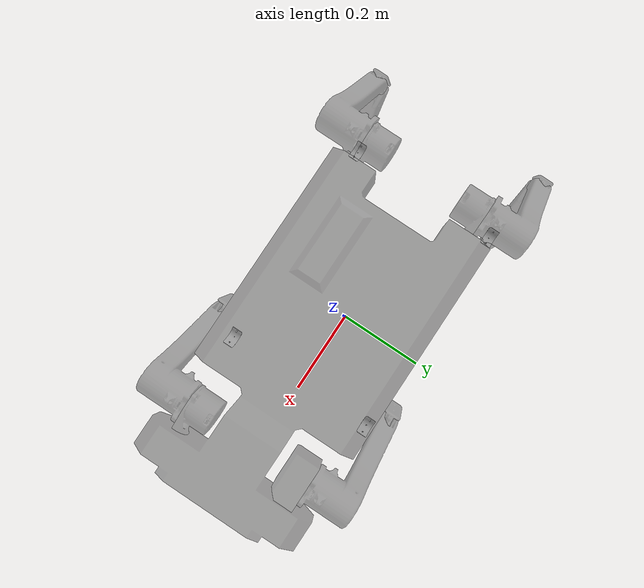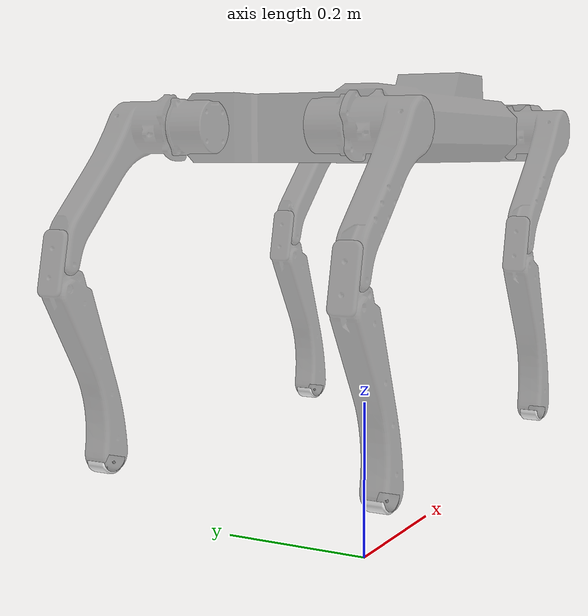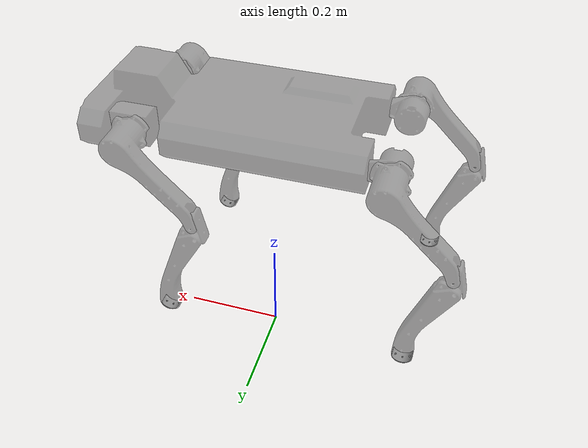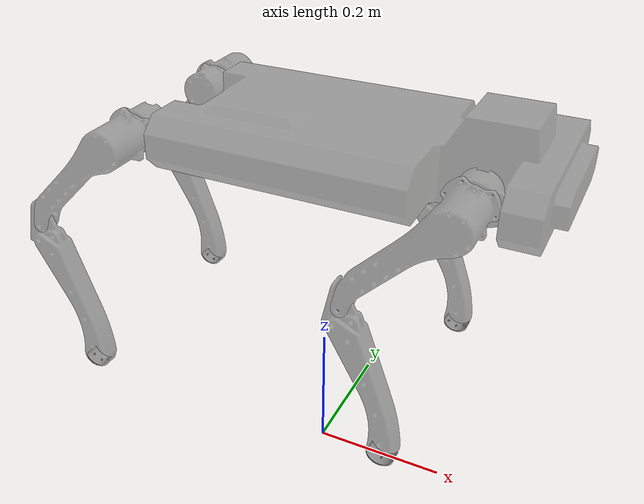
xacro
<?xml version="1.0" encoding="utf-8"?>
<robot name="quadruped" xmlns:xacro="http://ros.org/wiki/xacro">
  <xacro:include filename="ros2_control.xacro"/>

  <link name="world"></link>

  <!-- ******************************  MainBody  ****************************** -->
  <link name="MainBody">
    <inertial>
      <origin
        xyz="0.0699847914844596 -0.00356357206679569 0.0384781103388268"
        rpy="0 0 0" />
      <mass
        value="2.19167044853653" />
      <inertia
        ixx="0.005553479301618"
        ixy="-6.540085990001E-06"
        ixz="7.50530470509038E-07"
        iyy="0.00427828043368081"
        iyz="-5.53252407160373E-06"
        izz="0.00867140989666068" />
    </inertial>
    <visual>
      <origin
        xyz="0 0 0"
        rpy="0 0 0" />
      <geometry>
        <mesh
          filename="package://quadruped/meshes/MainBody.STL" />
      </geometry>
      <material
        name="">
        <color
          rgba="0.3 0.3 0.3 0.5" />
      </material>
    </visual>
    <collision>
      <origin
        xyz="0 0 0"
        rpy="0 0 0" />
      <geometry>
        <mesh
          filename="package://quadruped/meshes/collisions/MainBody.STL" />
      </geometry>
    </collision>
  </link>

  <joint name="MainBodyJoint" type="fixed">
    <origin
      xyz="0 0 0.5"
      rpy="0 0 0" />
    <parent
      link="world" />
    <child
      link="MainBody" />
  </joint>

  <!-- ******************************  FL_HipLink  ****************************** -->
  <link name="FL_HipLink">
    <inertial>
      <origin
        xyz="-0.0474383151933495 -0.0147762956502852 -0.000133539761215884"
        rpy="0 0 0" />
      <mass
        value="0.0912610289974214" />
      <inertia
        ixx="2.62643461992781E-05"
        ixy="6.64542513446049E-07"
        ixz="2.08491311297733E-09"
        iyy="4.14660535595442E-05"
        iyz="-1.29024359886147E-07"
        izz="2.91589180391666E-05" />
    </inertial>
    <visual>
      <origin
        xyz="0 0 0"
        rpy="0 0 0" />
      <geometry>
        <mesh
          filename="package://quadruped/meshes/FL_HipLink.STL" />
      </geometry>
      <material
        name="">
        <color
          rgba="0.3 0.3 0.3 0.5" />
      </material>
    </visual>
    <collision>
      <origin
        xyz="0 0 0"
        rpy="0 0 0" />
      <geometry>
        <mesh
          filename="package://quadruped/meshes/collisions/FL_HipLink.STL" />
      </geometry>
    </collision>
  </link>

  <joint name="FL_HipJoint" type="revolute">
    <origin
      xyz="0.2808 0.1 0.037"
      rpy="0 0 0" />
    <parent
      link="MainBody" />
    <child
      link="FL_HipLink" />
    <axis
      xyz="1 0 0" />
    <limit
      lower="-0.175"
      upper="1.571"
      effort="0"
      velocity="0" />
    <dynamics damping="0.7" />
  </joint>

  <!-- ******************************  FL_FemurLink  ****************************** -->
  <link name="FL_FemurLink">
    <inertial>
      <origin
        xyz="-0.019067661192873 0.0482776334868805 -0.0179044704692111"
        rpy="0 0 0" />
      <mass
        value="0.16400629425815" />
      <inertia
        ixx="0.000129344985699891"
        ixy="-2.90363645954103E-06"
        ixz="-8.0603844096841E-05"
        iyy="0.000234982427796547"
        iyz="-2.84523643101322E-06"
        izz="0.000125756506493398" />
    </inertial>
    <visual>
      <origin
        xyz="0 0 0"
        rpy="0 0 0" />
      <geometry>
        <mesh
          filename="package://quadruped/meshes/FL_FemurLink.STL" />
      </geometry>
      <material
        name="">
        <color
          rgba="0.3 0.3 0.3 0.5" />
      </material>
    </visual>
    <collision>
      <origin
        xyz="0 0 0"
        rpy="0 0 0" />
      <geometry>
        <mesh
          filename="package://quadruped/meshes/collisions/FL_FemurLink.STL" />
      </geometry>
    </collision>
  </link>

  <joint name="FL_FemurJoint" type="revolute">
    <origin
      xyz="-0.054 -0.009 0"
      rpy="0 0 0" />
    <parent
      link="FL_HipLink" />
    <child
      link="FL_FemurLink" />
    <axis
      xyz="0 1 0" />
    <limit
      lower="-0.785"
      upper="0.785"
      effort="0"
      velocity="0" />
    <dynamics damping="0.7" />
  </joint>

  <!-- ******************************  FL_TibiaLink  ****************************** -->
  <link name="FL_TibiaLink">
    <inertial>
      <origin
        xyz="0.0322017175929264 2.39643160090258E-05 -0.0962232443701883"
        rpy="0 0 0" />
      <mass
        value="0.109672208230116" />
      <inertia
        ixx="0.000411262084214036"
        ixy="-9.23674401608681E-07"
        ixz="0.000137528054915291"
        iyy="0.000471917665955004"
        iyz="2.15761541594468E-06"
        izz="6.64698615962603E-05" />
    </inertial>
    <visual>
      <origin
        xyz="0 0 0"
        rpy="0 0 0" />
      <geometry>
        <mesh
          filename="package://quadruped/meshes/FL_TibiaLink.STL" />
      </geometry>
      <material
        name="">
        <color
          rgba="0.3 0.3 0.3 0.5" />
      </material>
    </visual>
    <collision>
      <origin
        xyz="0 0 0"
        rpy="0 0 0" />
      <geometry>
        <mesh
          filename="package://quadruped/meshes/collisions/FL_TibiaLink.STL" />
      </geometry>
    </collision>
  </link>

  <joint name="FL_TibiaJoint"
    type="revolute">
    <origin
      xyz="-0.1283 0.0745 -0.1404"
      rpy="0 0 0" />
    <parent
      link="FL_FemurLink" />
    <child
      link="FL_TibiaLink" />
    <axis
      xyz="0 1 0" />
    <limit
      lower="-1.571"
      upper="0"
      effort="0"
      velocity="0" />
    <dynamics damping="0.7" />
  </joint>

  <!-- ******************************  FL_FootLink  ****************************** -->
  <link name="FL_FootLink">
    <inertial>
      <origin
        xyz="0.000340694607176201 1.29750897526204E-10 0.00531238344111944"
        rpy="0 0 0" />
      <mass
        value="0.0026171008368923" />
      <inertia
        ixx="1.42176481764719E-07"
        ixy="5.41889139229988E-14"
        ixz="2.0650421997253E-08"
        iyy="3.94491238638286E-07"
        iyz="-1.26336440804866E-14"
        izz="4.62835009996326E-07" />
    </inertial>
    <visual>
      <origin
        xyz="0 0 0"
        rpy="0 0 0" />
      <geometry>
        <mesh
          filename="package://quadruped/meshes/FL_FootLink.STL" />
      </geometry>
      <material
        name="">
        <color
          rgba="1 1 1 1" />
      </material>
    </visual>
    <collision>
      <origin
        xyz="0 0 0"
        rpy="0 0 0" />
      <geometry>
        <mesh
          filename="package://quadruped/meshes/collisions/FL_FootLink.STL" />
      </geometry>
    </collision>
  </link>

  <joint name="FL_FootJoint"
    type="fixed">
    <origin
      xyz="0.063753 0 -0.2336"
      rpy="0 0 0" />
    <parent
      link="FL_TibiaLink" />
    <child
      link="FL_FootLink" />
    <axis
      xyz="0 0 0" />
  </joint>

  <!-- ******************************  FR_HipLink  ****************************** -->
  <link name="FR_HipLink">
    <inertial>
      <origin
        xyz="-0.0474384514030271 0.0147763300480575 -0.000133542163833156"
        rpy="0 0 0" />
      <mass
        value="0.0912604374264468" />
      <inertia
        ixx="2.62642303167425E-05"
        ixy="-6.64485390732827E-07"
        ixz="2.08557755571092E-09"
        iyy="4.14659005585127E-05"
        iyz="1.29025236281121E-07"
        izz="2.91587855341185E-05" />
    </inertial>
    <visual>
      <origin
        xyz="0 0 0"
        rpy="0 0 0" />
      <geometry>
        <mesh
          filename="package://quadruped/meshes/FR_HipLink.STL" />
      </geometry>
      <material
        name="">
        <color
          rgba="0.3 0.3 0.3 0.5" />
      </material>
    </visual>
    <collision>
      <origin
        xyz="0 0 0"
        rpy="0 0 0" />
      <geometry>
        <mesh
          filename="package://quadruped/meshes/collisions/FR_HipLink.STL" />
      </geometry>
    </collision>
  </link>

  <joint name="FR_HipJoint"
    type="revolute">
    <origin
      xyz="0.2808 -0.1 0.037"
      rpy="0 0 0" />
    <parent
      link="MainBody" />
    <child
      link="FR_HipLink" />
    <axis
      xyz="1 0 0" />
    <limit
      lower="-1.571"
      upper="0.175"
      effort="0"
      velocity="0" />
    <dynamics damping="0.7" />
  </joint>

  <!-- ******************************  FR_FemurLink  ****************************** -->
  <link name="FR_FemurLink">
    <inertial>
      <origin
        xyz="-0.0190676655356846 -0.0466135123749134 -0.0179044738259941"
        rpy="0 0 0" />
      <mass
        value="0.164006273287783" />
      <inertia
        ixx="0.00012934517628055"
        ixy="2.9036208549203E-06"
        ixz="-8.06040324775779E-05"
        iyy="0.000234982745310931"
        iyz="2.84520964677916E-06"
        izz="0.000125756633657412" />
    </inertial>
    <visual>
      <origin
        xyz="0 0 0"
        rpy="0 0 0" />
      <geometry>
        <mesh
          filename="package://quadruped/meshes/FR_FemurLink.STL" />
      </geometry>
      <material
        name="">
        <color
          rgba="0.3 0.3 0.3 0.5" />
      </material>
    </visual>
    <collision>
      <origin
        xyz="0 0 0"
        rpy="0 0 0" />
      <geometry>
        <mesh
          filename="package://quadruped/meshes/collisions/FR_FemurLink.STL" />
      </geometry>
    </collision>
  </link>

  <joint name="FR_FemurJoint"
    type="revolute">
    <origin
      xyz="-0.054 0.009 0"
      rpy="0 0 0" />
    <parent
      link="FR_HipLink" />
    <child
      link="FR_FemurLink" />
    <axis
      xyz="0 1 0" />
    <limit
      lower="-0.785"
      upper="0.785"
      effort="0"
      velocity="0" />
    <dynamics damping="0.7" />
  </joint>

  <!-- ******************************  FR_TibiaLink  ****************************** -->
  <link name="FR_TibiaLink">
    <inertial>
      <origin
        xyz="0.032201696266614 -2.39145069415025E-05 -0.0962231575946988"
        rpy="0 0 0" />
      <mass
        value="0.109672400053178" />
      <inertia
        ixx="0.000411263099234663"
        ixy="9.23702371695808E-07"
        ixz="0.000137528330485256"
        iyy="0.000471918768708998"
        iyz="-2.15772655059977E-06"
        izz="6.64699651574826E-05" />
    </inertial>
    <visual>
      <origin
        xyz="0 0 0"
        rpy="0 0 0" />
      <geometry>
        <mesh
          filename="package://quadruped/meshes/FR_TibiaLink.STL" />
      </geometry>
      <material
        name="">
        <color
          rgba="0.3 0.3 0.3 0.5" />
      </material>
    </visual>
    <collision>
      <origin
        xyz="0 0 0"
        rpy="0 0 0" />
      <geometry>
        <mesh
          filename="package://quadruped/meshes/collisions/FR_TibiaLink.STL" />
      </geometry>
    </collision>
  </link>

  <joint name="FR_TibiaJoint"
    type="revolute">
    <origin
      xyz="-0.1283 -0.0745 -0.1404"
      rpy="0 0 0" />
    <parent
      link="FR_FemurLink" />
    <child
      link="FR_TibiaLink" />
    <axis
      xyz="0 1 0" />
    <limit
      lower="-1.571"
      upper="0"
      effort="0"
      velocity="0" />
    <dynamics damping="0.7" />
  </joint>

  <!-- ******************************  FR_FootLink  ****************************** -->
  <link name="FR_FootLink">
    <inertial>
      <origin
        xyz="0.000340717980085559 -7.92920729075774E-11 0.00531238163967823"
        rpy="0 0 0" />
      <mass
        value="0.00261710077329796" />
      <inertia
        ixx="1.42176397424818E-07"
        ixy="5.55077570146718E-14"
        ixz="2.06498502048881E-08"
        iyy="3.94491214620165E-07"
        iyz="4.55187267688304E-15"
        izz="4.62835064651917E-07" />
    </inertial>
    <visual>
      <origin
        xyz="0 0 0"
        rpy="0 0 0" />
      <geometry>
        <mesh
          filename="package://quadruped/meshes/FR_FootLink.STL" />
      </geometry>
      <material
        name="">
        <color
          rgba="1 1 1 1" />
      </material>
    </visual>
    <collision>
      <origin
        xyz="0 0 0"
        rpy="0 0 0" />
      <geometry>
        <mesh
          filename="package://quadruped/meshes/collisions/FR_FootLink.STL" />
      </geometry>
    </collision>
  </link>

  <joint name="FR_FootJoint"
    type="fixed">
    <origin
      xyz="0.063753 0 -0.2336"
      rpy="0 0 0" />
    <parent
      link="FR_TibiaLink" />
    <child
      link="FR_FootLink" />
    <axis
      xyz="0 0 0" />
  </joint>

  <!-- ******************************  RL_HipLink  ****************************** -->
  <link name="RL_HipLink">
    <inertial>
      <origin
        xyz="-0.047438452373836 -0.0147763312239577 -0.00013354062146792"
        rpy="0 0 0" />
      <mass
        value="0.0912604411052719" />
      <inertia
        ixx="2.62642330393833E-05"
        ixy="6.6448509889878E-07"
        ixz="2.08491461643559E-09"
        iyy="4.14659029589153E-05"
        iyz="-1.29024361174821E-07"
        izz="2.9158785320734E-05" />
    </inertial>
    <visual>
      <origin
        xyz="0 0 0"
        rpy="0 0 0" />
      <geometry>
        <mesh
          filename="package://quadruped/meshes/RL_HipLink.STL" />
      </geometry>
      <material
        name="">
        <color
          rgba="0.3 0.3 0.3 0.5" />
      </material>
    </visual>
    <collision>
      <origin
        xyz="0 0 0"
        rpy="0 0 0" />
      <geometry>
        <mesh
          filename="package://quadruped/meshes/collisions/RL_HipLink.STL" />
      </geometry>
    </collision>
  </link>

  <joint name="RL_HipJoint"
    type="revolute">
    <origin
      xyz="-0.1864 0.1 0.037"
      rpy="0 0 0" />
    <parent
      link="MainBody" />
    <child
      link="RL_HipLink" />
    <axis
      xyz="1 0 0" />
    <limit
      lower="-0.175"
      upper="1.571"
      effort="0"
      velocity="0" />
    <dynamics damping="0.7" />
  </joint>

  <!-- ******************************  RL_FemurLink  ****************************** -->
  <link name="RL_FemurLink">
    <inertial>
      <origin
        xyz="-0.0190676612201011 0.0482776333402242 -0.0179044703898302"
        rpy="0 0 0" />
      <mass
        value="0.164006293646539" />
      <inertia
        ixx="0.000129344985575664"
        ixy="-2.90363647177888E-06"
        ixz="-8.06038437038234E-05"
        iyy="0.000234982426414766"
        iyz="-2.84523643331501E-06"
        izz="0.000125756505235998" />
    </inertial>
    <visual>
      <origin
        xyz="0 0 0"
        rpy="0 0 0" />
      <geometry>
        <mesh
          filename="package://quadruped/meshes/RL_FemurLink.STL" />
      </geometry>
      <material
        name="">
        <color
          rgba="0.3 0.3 0.3 0.5" />
      </material>
    </visual>
    <collision>
      <origin
        xyz="0 0 0"
        rpy="0 0 0" />
      <geometry>
        <mesh
          filename="package://quadruped/meshes/collisions/RL_FemurLink.STL" />
      </geometry>
    </collision>
  </link>

  <joint name="RL_FemurJoint"
    type="revolute">
    <origin
      xyz="-0.0539999999999997 -0.00900000000000012 0"
      rpy="0 0 0" />
    <parent
      link="RL_HipLink" />
    <child
      link="RL_FemurLink" />
    <axis
      xyz="0 1 0" />
    <limit
      lower="-0.785"
      upper="0.785"
      effort="0"
      velocity="0" />
    <dynamics damping="0.7" />
  </joint>

  <!-- ******************************  RL_TibiaLink  ****************************** -->
  <link name="RL_TibiaLink">
    <inertial>
      <origin
        xyz="0.0322017175929267 2.39643160090605E-05 -0.0962232443701882"
        rpy="0 0 0" />
      <mass
        value="0.109672208230115" />
      <inertia
        ixx="0.000411262084214035"
        ixy="-9.23674401608713E-07"
        ixz="0.000137528054915292"
        iyy="0.000471917665955"
        iyz="2.15761541594472E-06"
        izz="6.64698615962576E-05" />
    </inertial>
    <visual>
      <origin
        xyz="0 0 0"
        rpy="0 0 0" />
      <geometry>
        <mesh
          filename="package://quadruped/meshes/RL_TibiaLink.STL" />
      </geometry>
      <material
        name="">
        <color
          rgba="0.3 0.3 0.3 0.5" />
      </material>
    </visual>
    <collision>
      <origin
        xyz="0 0 0"
        rpy="0 0 0" />
      <geometry>
        <mesh
          filename="package://quadruped/meshes/collisions/RL_TibiaLink.STL" />
      </geometry>
    </collision>
  </link>

  <joint name="RL_TibiaJoint"
    type="revolute">
    <origin
      xyz="-0.128298296280577 0.0745 -0.140402280570314"
      rpy="0 0 0" />
    <parent
      link="RL_FemurLink" />
    <child
      link="RL_TibiaLink" />
    <axis
      xyz="0 1 0" />
    <limit
      lower="-1.571"
      upper="0"
      effort="0"
      velocity="0" />
    <dynamics damping="0.7" />
  </joint>

  <!-- ******************************  RL_FootLink  ****************************** -->
  <link name="RL_FootLink">
    <inertial>
      <origin
        xyz="0.000340694607175895 1.29750959976249E-10 0.00531238344111933"
        rpy="0 0 0" />
      <mass
        value="0.00261710083689229" />
      <inertia
        ixx="1.42176481764717E-07"
        ixy="5.41889127288802E-14"
        ixz="2.06504219972552E-08"
        iyy="3.94491238638283E-07"
        iyz="-1.26336450002804E-14"
        izz="4.62835009996322E-07" />
    </inertial>
    <visual>
      <origin
        xyz="0 0 0"
        rpy="0 0 0" />
      <geometry>
        <mesh
          filename="package://quadruped/meshes/RL_FootLink.STL" />
      </geometry>
      <material
        name="">
        <color
          rgba="1 1 1 1" />
      </material>
    </visual>
    <collision>
      <origin
        xyz="0 0 0"
        rpy="0 0 0" />
      <geometry>
        <mesh
          filename="package://quadruped/meshes/collisions/RL_FootLink.STL" />
      </geometry>
    </collision>
  </link>

  <joint name="RL_FootJoint"
    type="fixed">
    <origin
      xyz="0.0637534602692007 0 -0.233603271727562"
      rpy="0 0 0" />
    <parent
      link="RL_TibiaLink" />
    <child
      link="RL_FootLink" />
    <axis
      xyz="0 0 0" />
  </joint>

  <!-- ******************************  RR_HipLink  ****************************** -->
  <link name="RR_HipLink">
    <inertial>
      <origin
        xyz="-0.0474383828125632 0.0147763122611671 -0.000133507988380466"
        rpy="0 0 0" />
      <mass
        value="0.091260731372522" />
      <inertia
        ixx="2.62642868979782E-05"
        ixy="-6.64514098666864E-07"
        ixz="2.04904716488888E-09"
        iyy="4.14659758603212E-05"
        iyz="1.28997305406123E-07"
        izz="2.91588518946717E-05" />
    </inertial>
    <visual>
      <origin
        xyz="0 0 0"
        rpy="0 0 0" />
      <geometry>
        <mesh
          filename="package://quadruped/meshes/RR_HipLink.STL" />
      </geometry>
      <material
        name="">
        <color
          rgba="0.3 0.3 0.3 0.5" />
      </material>
    </visual>
    <collision>
      <origin
        xyz="0 0 0"
        rpy="0 0 0" />
      <geometry>
        <mesh
          filename="package://quadruped/meshes/collisions/RR_HipLink.STL" />
      </geometry>
    </collision>
  </link>

  <joint name="RR_HipJoint"
    type="revolute">
    <origin
      xyz="-0.1864 -0.1 0.037"
      rpy="0 0 0" />
    <parent
      link="MainBody" />
    <child
      link="RR_HipLink" />
    <axis
      xyz="1 0 0" />
    <limit
      lower="-1.571"
      upper="0.175"
      effort="0"
      velocity="0" />
    <dynamics damping="0.7" />
  </joint>

  <!-- ******************************  RR_FemurLink  ****************************** -->
  <link name="RR_FemurLink">
    <inertial>
      <origin
        xyz="-0.0190676655356846 -0.0466135123749133 -0.0179044738259942"
        rpy="0 0 0" />
      <mass
        value="0.164006273287783" />
      <inertia
        ixx="0.000129345176280543"
        ixy="2.90362085491998E-06"
        ixz="-8.06040324775837E-05"
        iyy="0.000234982745310922"
        iyz="2.84520964677911E-06"
        izz="0.000125756633657409" />
    </inertial>
    <visual>
      <origin
        xyz="0 0 0"
        rpy="0 0 0" />
      <geometry>
        <mesh
          filename="package://quadruped/meshes/RR_FemurLink.STL" />
      </geometry>
      <material
        name="">
        <color
          rgba="0.3 0.3 0.3 0.5" />
      </material>
    </visual>
    <collision>
      <origin
        xyz="0 0 0"
        rpy="0 0 0" />
      <geometry>
        <mesh
          filename="package://quadruped/meshes/collisions/RR_FemurLink.STL" />
      </geometry>
    </collision>
  </link>

  <joint name="RR_FemurJoint"
    type="revolute">
    <origin
      xyz="-0.0539999999999997 0.00900000000000001 0"
      rpy="0 0 0" />
    <parent
      link="RR_HipLink" />
    <child
      link="RR_FemurLink" />
    <axis
      xyz="0 1 0" />
    <limit
      lower="-0.785"
      upper="0.785"
      effort="0"
      velocity="0" />
    <dynamics damping="0.7" />
  </joint>

  <!-- ******************************  RR_TibiaLink  ****************************** -->
  <link name="RR_TibiaLink">
    <inertial>
      <origin
        xyz="0.0322016962666145 -2.39145069416136E-05 -0.0962231575946956"
        rpy="0 0 0" />
      <mass
        value="0.109672400053178" />
      <inertia
        ixx="0.000411263099234663"
        ixy="9.23702371695801E-07"
        ixz="0.000137528330485257"
        iyy="0.000471918768708998"
        iyz="-2.15772655059978E-06"
        izz="6.64699651574822E-05" />
    </inertial>
    <visual>
      <origin
        xyz="0 0 0"
        rpy="0 0 0" />
      <geometry>
        <mesh
          filename="package://quadruped/meshes/RR_TibiaLink.STL" />
      </geometry>
      <material
        name="">
        <color
          rgba="0.3 0.3 0.3 0.5" />
      </material>
    </visual>
    <collision>
      <origin
        xyz="0 0 0"
        rpy="0 0 0" />
      <geometry>
        <mesh
          filename="package://quadruped/meshes/collisions/RR_TibiaLink.STL" />
      </geometry>
    </collision>
  </link>

  <joint name="RR_TibiaJoint"
    type="revolute">
    <origin
      xyz="-0.128298296280577 -0.0745000000000001 -0.140402280570314"
      rpy="0 0 0" />
    <parent
      link="RR_FemurLink" />
    <child
      link="RR_TibiaLink" />
    <axis
      xyz="0 1 0" />
    <limit
      lower="-1.571"
      upper="0"
      effort="0"
      velocity="0" />
    <dynamics damping="0.7" />
  </joint>

  <!-- ******************************  RR_FootLink  ****************************** -->
  <link name="RR_FootLink">
    <inertial>
      <origin
        xyz="0.00034071798008628 -7.92921284187287E-11 0.00531238163968074"
        rpy="0 0 0" />
      <mass
        value="0.00261710077329803" />
      <inertia
        ixx="1.42176397424824E-07"
        ixy="5.5507757782185E-14"
        ixz="2.06498502048821E-08"
        iyy="3.94491214620184E-07"
        iyz="4.55187376116775E-15"
        izz="4.62835064651936E-07" />
    </inertial>
    <visual>
      <origin
        xyz="0 0 0"
        rpy="0 0 0" />
      <geometry>
        <mesh
          filename="package://quadruped/meshes/RR_FootLink.STL" />
      </geometry>
      <material
        name="">
        <color
          rgba="1 1 1 1" />
      </material>
    </visual>
    <collision>
      <origin
        xyz="0 0 0"
        rpy="0 0 0" />
      <geometry>
        <mesh
          filename="package://quadruped/meshes/collisions/RR_FootLink.STL" />
      </geometry>
    </collision>
  </link>

  <joint name="RR_FootJoint"
    type="fixed">
    <origin
      xyz="0.0637534602692004 0 -0.233603271727562"
      rpy="0 0 0" />
    <parent
      link="RR_TibiaLink" />
    <child
      link="RR_FootLink" />
    <axis
      xyz="0 0 0" />
  </joint>
</robot>
